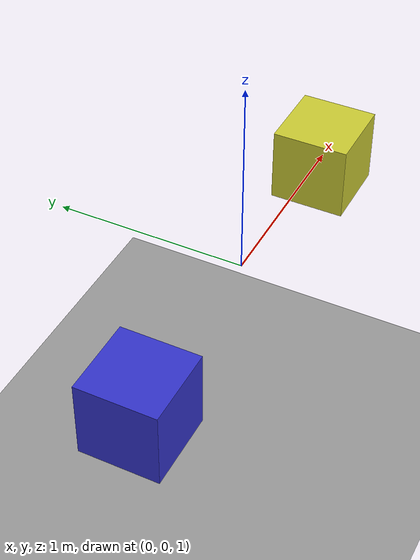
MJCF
<mujoco>
  <option gravity="0 0 -9.81" />
  <worldbody>
    <body name="object_4" pos="0 0 -1">
      <geom type="plane" size="20 20 0.1" rgba="0.6 0.6 0.6 1" />
    </body>
    <body name="object_3" pos="0 0 0">
      <geom type="plane" size="10 10 0.1" quat="0.382683 0 0 0.92388" rgba="0.7 0.3 0.3 1" />
    </body>
    <body name="object_1" pos="-1 0 1">
      <geom type="box" size="0.2 0.2 0.2" mass="3" rgba="0.2 0.2 0.8 1" />
      <joint type="free" name="object_1_joint" />
    </body>
    <body name="object_2" pos="1 0 1">
      <geom type="box" size="0.2 0.2 0.2" mass="1" rgba="0.8 0.8 0.2 1" />
      <joint type="free" name="object_2_joint" />
    </body>
  </worldbody>
</mujoco>
